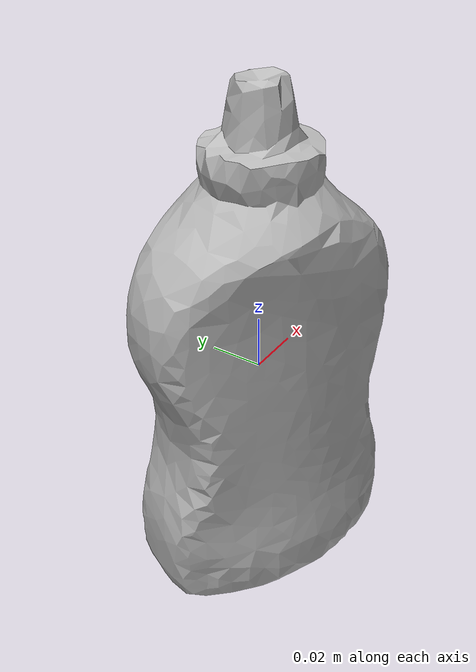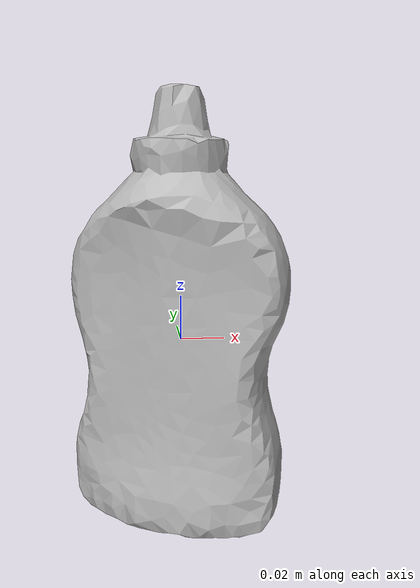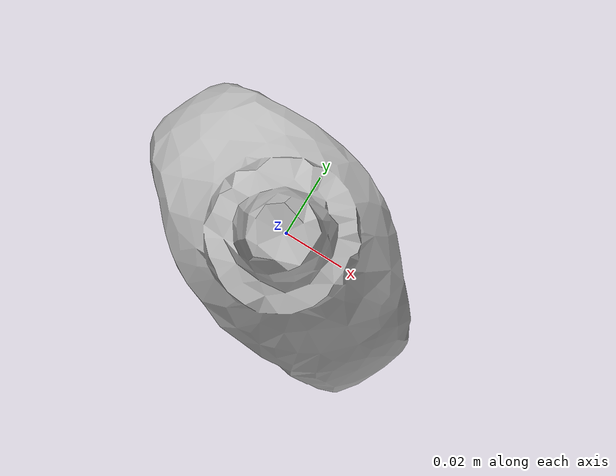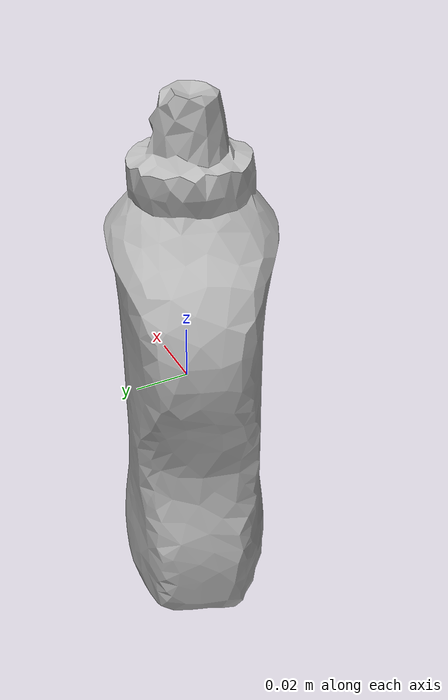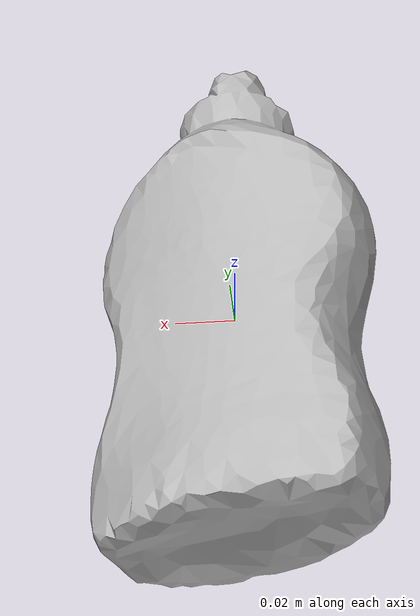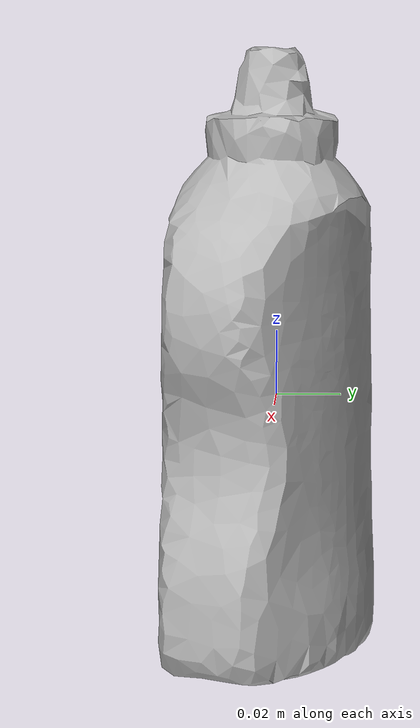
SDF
<?xml version="1.0" ?>
<sdf version="1.7">
    <model name="006_mustard_bottle">
        <link name="006_mustard_bottle_link">
            <inertial>
                <pose>-0.0009723425634233313 -0.0020723849022121475 -0.005612683258425311 0.0 0.0 0.0</pose>
                <mass>1.0</mass>
                <inertia>0.002430465856537604 0.00012578603734415434 -8.248977722378307e-06 0.0026748616892600034 -1.1689973433406367e-05 0.0007015119851760366</inertia>
            </inertial>
            <collision name="006_mustard_bottle_collision">
                <surface>
                    <friction>
                        <ode>
                            <mu>1</mu>
                            <mu2>1</mu2>
                        </ode>
                    </friction>
                </surface>
                <max_contact>1</max_contact>
                <geometry>
                    <mesh>
                        <uri>model://006_mustard_bottle/textured.obj</uri>
                    </mesh>
                </geometry>
            </collision>
            <visual name="006_mustard_bottle_visual">
                <geometry>
                    <mesh>
                        <uri>model://006_mustard_bottle/textured.obj</uri>
                    </mesh>
                </geometry>
            </visual>
        </link>

        <joint name="world_to_base_link" type="fixed">
            <parent>world</parent>
            <child>006_mustard_bottle_link</child>
        </joint>
    </model>
</sdf>
